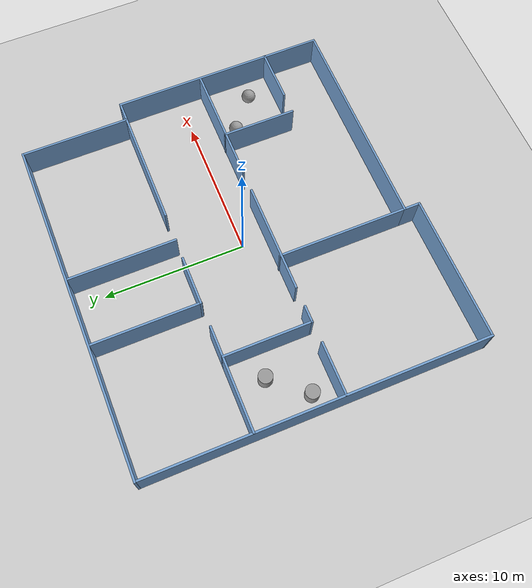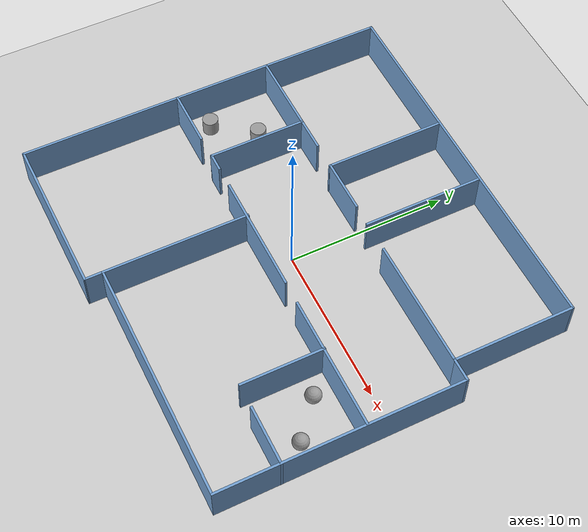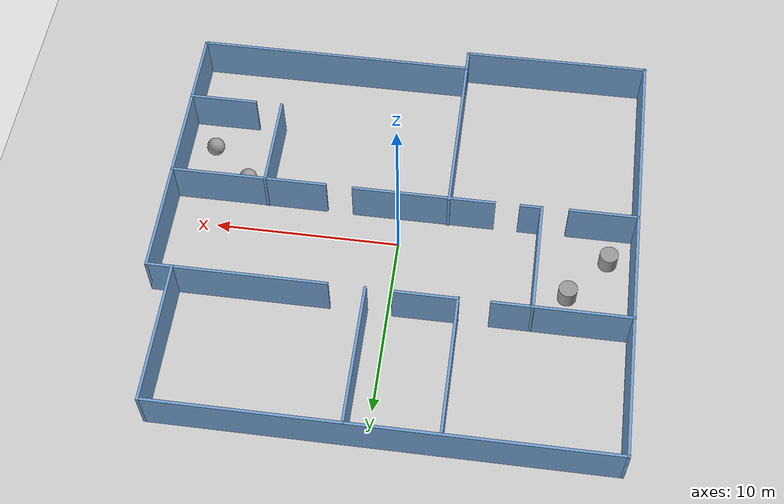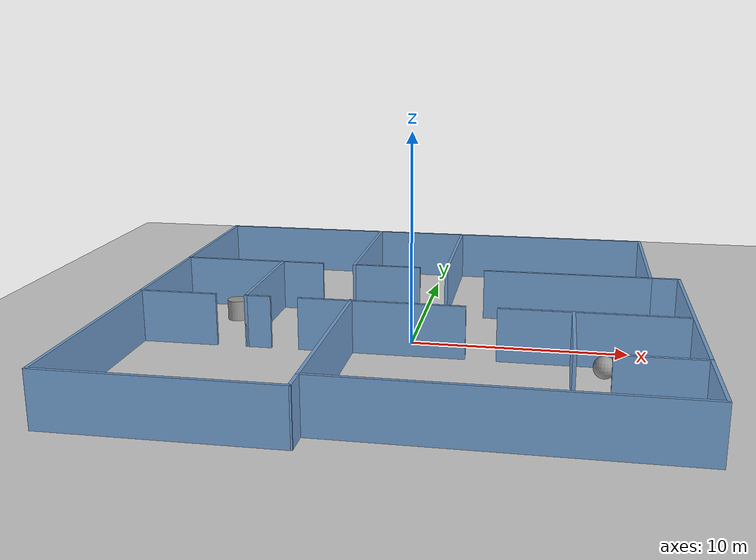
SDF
<sdf version="1.6">
 <world name="default">
  <light name="sun" type="directional">
   <pose>0 0 10 0 -0 0</pose>
   <diffuse>0.8 0.8 0.8 1</diffuse>
   <specular>0.2 0.2 0.2 1</specular>
   <attenuation>
    <range>1000</range>
    <constant>0.9</constant>
    <linear>0.01</linear>
    <quadratic>0.001</quadratic>
   </attenuation>
   <direction>-0.5 0.1 -0.9</direction>
  </light>
  <model name="ground_plane">
   <static>1</static>
   <link name="link">
    <collision name="collision">
     <geometry><plane><normal>0 0 1</normal><size>100 100</size></plane></geometry>
     <surface>
      <contact><collide_bitmask>65535</collide_bitmask></contact>
      <friction><ode><mu>100</mu><mu2>50</mu2></ode></friction>
     </surface>
    </collision>
    <visual name="visual">
     <cast_shadows>0</cast_shadows>
     <geometry><plane><normal>0 0 1</normal><size>100 100</size></plane></geometry>
     <material>
      <script><uri>file://media/materials/scripts/gazebo.material</uri><name>Gazebo/Grey</name></script>
     </material>
    </visual>
   </link>
  </model>
  <gravity>0 0 -9.8</gravity>
  <magnetic_field>6e-06 2.3e-05 -4.2e-05</magnetic_field>
  <atmosphere type="adiabatic"/>
  <physics name="default_physics" default="0" type="ode">
   <max_step_size>0.001</max_step_size>
   <real_time_factor>1</real_time_factor>
   <real_time_update_rate>1000</real_time_update_rate>
  </physics>
  <scene><ambient>0.4 0.4 0.4 1</ambient><background>0.7 0.7 0.7 1</background><shadows>1</shadows></scene>
  <audio><device>default</device></audio>
  <spherical_coordinates>
   <surface_model>EARTH_WGS84</surface_model>
   <latitude_deg>0</latitude_deg>
   <longitude_deg>0</longitude_deg>
   <elevation>0</elevation>
   <heading_deg>0</heading_deg>
  </spherical_coordinates>
  <model name="Beer_robot64">
   <pose>-0.0369 0.01443 0 0 -0 0</pose>
   <link name="Wall_10">
    <collision name="Wall_10_Collision">
     <geometry><box><size>15.25 0.15 2.5</size></box></geometry>
     <pose>0 0 1.25 0 -0 0</pose>
    </collision>
    <visual name="Wall_10_Visual">
     <pose>0 0 1.25 0 -0 0</pose>
     <geometry><box><size>15.25 0.15 2.5</size></box></geometry>
     <material>
      <script><uri>file://media/materials/scripts/gazebo.material</uri><name>Gazebo/Grey</name></script>
      <ambient>0.447059 0.623529 0.811765 1</ambient>
     </material>
     <meta><layer>0</layer></meta>
    </visual>
    <pose>12.5976 -3.22419 0 0 -0 1.5708</pose>
   </link>
   <link name="Wall_15">
    <collision name="Wall_15_Collision">
     <geometry><box><size>1.5 0.15 2.5</size></box></geometry>
     <pose>0 0 1.25 0 -0 0</pose>
    </collision>
    <visual name="Wall_15_Visual">
     <pose>0 0 1.25 0 -0 0</pose>
     <geometry><box><size>1.5 0.15 2.5</size></box></geometry>
     <material>
      <script><uri>file://media/materials/scripts/gazebo.material</uri><name>Gazebo/Grey</name></script>
      <ambient>0.447059 0.623529 0.811765 1</ambient>
     </material>
     <meta><layer>0</layer></meta>
    </visual>
    <pose>11.9226 4.32581 0 0 -0 3.14159</pose>
   </link>
   <link name="Wall_16">
    <collision name="Wall_16_Collision">
     <geometry><box><size>7.75 0.15 2.5</size></box></geometry>
     <pose>0 0 1.25 0 -0 0</pose>
    </collision>
    <visual name="Wall_16_Visual">
     <pose>0 0 1.25 0 -0 0</pose>
     <geometry><box><size>7.75 0.15 2.5</size></box></geometry>
     <material>
      <script><uri>file://media/materials/scripts/gazebo.material</uri><name>Gazebo/Grey</name></script>
      <ambient>0.447059 0.623529 0.811765 1</ambient>
     </material>
     <meta><layer>0</layer></meta>
    </visual>
    <pose>11.2476 8.12581 0 0 -0 1.5708</pose>
   </link>
   <link name="Wall_24">
    <collision name="Wall_24_Collision">
     <geometry><box><size>24 0.15 2.5</size></box></geometry>
     <pose>0 0 1.25 0 -0 0</pose>
    </collision>
    <visual name="Wall_24_Visual">
     <pose>0 0 1.25 0 -0 0</pose>
     <geometry><box><size>24 0.15 2.5</size></box></geometry>
     <material>
      <script><uri>file://media/materials/scripts/gazebo.material</uri><name>Gazebo/Grey</name></script>
      <ambient>0.447059 0.623529 0.811765 1</ambient>
     </material>
     <meta><layer>0</layer></meta>
    </visual>
    <pose>-12.5912 0.000993 0 0 -0 1.5708</pose>
   </link>
   <link name="Wall_26">
    <collision name="Wall_26_Collision">
     <geometry><box><size>24 0.15 2.5</size></box></geometry>
     <pose>0 0 1.25 0 -0 0</pose>
    </collision>
    <visual name="Wall_26_Visual">
     <pose>0 0 1.25 0 -0 0</pose>
     <geometry><box><size>24 0.15 2.5</size></box></geometry>
     <material>
      <script><uri>file://media/materials/scripts/gazebo.material</uri><name>Gazebo/Grey</name></script>
      <ambient>0.447059 0.623529 0.811765 1</ambient>
     </material>
     <meta><layer>0</layer></meta>
    </visual>
    <pose>-0.677406 11.9258 0 0 -0 3.14159</pose>
   </link>
   <link name="Wall_28">
    <collision name="Wall_28_Collision">
     <geometry><box><size>3.75 0.15 2.5</size></box></geometry>
     <pose>0 0 1.25 0 -0 0</pose>
    </collision>
    <visual name="Wall_28_Visual">
     <pose>0 0 1.25 0 -0 0</pose>
     <geometry><box><size>3.75 0.15 2.5</size></box></geometry>
     <material>
      <script><uri>file://media/materials/scripts/gazebo.material</uri><name>Gazebo/Grey</name></script>
      <ambient>0.447059 0.623529 0.811765 1</ambient>
     </material>
     <meta><layer>0</layer></meta>
    </visual>
    <pose>-10.781 -1.7817 0 0 -0 0</pose>
   </link>
   <link name="Wall_30">
    <collision name="Wall_30_Collision">
     <geometry><box><size>1.25 0.15 2.5</size></box></geometry>
     <pose>0 0 1.25 0 -0 0</pose>
    </collision>
    <visual name="Wall_30_Visual">
     <pose>0 0 1.25 0 -0 0</pose>
     <geometry><box><size>1.25 0.15 2.5</size></box></geometry>
     <material>
      <script><uri>file://media/materials/scripts/gazebo.material</uri><name>Gazebo/Grey</name></script>
      <ambient>0.447059 0.623529 0.811765 1</ambient>
     </material>
     <meta><layer>0</layer></meta>
    </visual>
    <pose>-6.9143 -1.74759 0 0 -0 0</pose>
   </link>
   <link name="Wall_32">
    <collision name="Wall_32_Collision">
     <geometry><box><size>7.75 0.15 2.5</size></box></geometry>
     <pose>0 0 1.25 0 -0 0</pose>
    </collision>
    <visual name="Wall_32_Visual">
     <pose>0 0 1.25 0 -0 0</pose>
     <geometry><box><size>7.75 0.15 2.5</size></box></geometry>
     <material>
      <script><uri>file://media/materials/scripts/gazebo.material</uri><name>Gazebo/Grey</name></script>
      <ambient>0.447059 0.623529 0.811765 1</ambient>
     </material>
     <meta><layer>0</layer></meta>
    </visual>
    <pose>-1.1221 -1.73876 0 0 -0 0</pose>
   </link>
   <link name="Wall_34">
    <collision name="Wall_34_Collision">
     <geometry><box><size>6.25 0.15 2.5</size></box></geometry>
     <pose>0 0 1.25 0 -0 0</pose>
    </collision>
    <visual name="Wall_34_Visual">
     <pose>0 0 1.25 0 -0 0</pose>
     <geometry><box><size>6.25 0.15 2.5</size></box></geometry>
     <material>
      <script><uri>file://media/materials/scripts/gazebo.material</uri><name>Gazebo/Grey</name></script>
      <ambient>0.447059 0.623529 0.811765 1</ambient>
     </material>
     <meta><layer>0</layer></meta>
    </visual>
    <pose>-7.4643 1.30241 0 0 -0 1.5708</pose>
   </link>
   <link name="Wall_36">
    <collision name="Wall_36_Collision">
     <geometry><box><size>5.25 0.15 2.5</size></box></geometry>
     <pose>0 0 1.25 0 -0 0</pose>
    </collision>
    <visual name="Wall_36_Visual">
     <pose>0 0 1.25 0 -0 0</pose>
     <geometry><box><size>5.25 0.15 2.5</size></box></geometry>
     <material>
      <script><uri>file://media/materials/scripts/gazebo.material</uri><name>Gazebo/Grey</name></script>
      <ambient>0.447059 0.623529 0.811765 1</ambient>
     </material>
     <meta><layer>0</layer></meta>
    </visual>
    <pose>-10.0143 4.35241 0 0 -0 3.14159</pose>
   </link>
   <link name="Wall_38">
    <collision name="Wall_38_Collision">
     <geometry><box><size>2.25 0.15 2.5</size></box></geometry>
     <pose>0 0 1.25 0 -0 0</pose>
    </collision>
    <visual name="Wall_38_Visual">
     <pose>0 0 1.25 0 -0 0</pose>
     <geometry><box><size>2.25 0.15 2.5</size></box></geometry>
     <material>
      <script><uri>file://media/materials/scripts/gazebo.material</uri><name>Gazebo/Grey</name></script>
      <ambient>0.447059 0.623529 0.811765 1</ambient>
     </material>
     <meta><layer>0</layer></meta>
    </visual>
    <pose>-6.4143 4.35241 0 0 -0 0</pose>
   </link>
   <link name="Wall_40">
    <collision name="Wall_40_Collision">
     <geometry><box><size>7.65476 0.15 2.5</size></box></geometry>
     <pose>0 0 1.25 0 -0 0</pose>
    </collision>
    <visual name="Wall_40_Visual">
     <pose>0 0 1.25 0 -0 0</pose>
     <geometry><box><size>7.65476 0.15 2.5</size></box></geometry>
     <material>
      <script><uri>file://media/materials/scripts/gazebo.material</uri><name>Gazebo/Grey</name></script>
      <ambient>0.447059 0.623529 0.811765 1</ambient>
     </material>
     <meta><layer>0</layer></meta>
    </visual>
    <pose>-3.63146 8.0896 0 0 -0 1.5708</pose>
   </link>
   <link name="Wall_42">
    <collision name="Wall_42_Collision">
     <geometry><box><size>3.5 0.15 2.5</size></box></geometry>
     <pose>0 0 1.25 0 -0 0</pose>
    </collision>
    <visual name="Wall_42_Visual">
     <pose>0 0 1.25 0 -0 0</pose>
     <geometry><box><size>3.5 0.15 2.5</size></box></geometry>
     <material>
      <script><uri>file://media/materials/scripts/gazebo.material</uri><name>Gazebo/Grey</name></script>
      <ambient>0.447059 0.623529 0.811765 1</ambient>
     </material>
     <meta><layer>0</layer></meta>
    </visual>
    <pose>-1.95646 4.35442 0 0 -0 0</pose>
   </link>
   <link name="Wall_44">
    <collision name="Wall_44_Collision">
     <geometry><box><size>7.75 0.15 2.5</size></box></geometry>
     <pose>0 0 1.25 0 -0 0</pose>
    </collision>
    <visual name="Wall_44_Visual">
     <pose>0 0 1.25 0 -0 0</pose>
     <geometry><box><size>7.75 0.15 2.5</size></box></geometry>
     <material>
      <script><uri>file://media/materials/scripts/gazebo.material</uri><name>Gazebo/Grey</name></script>
      <ambient>0.447059 0.623529 0.811765 1</ambient>
     </material>
     <meta><layer>0</layer></meta>
    </visual>
    <pose>1.15327 8.12245 0 0 -0 1.5708</pose>
   </link>
   <link name="Wall_46">
    <collision name="Wall_46_Collision">
     <geometry><box><size>8.25 0.15 2.5</size></box></geometry>
     <pose>0 0 1.25 0 -0 0</pose>
    </collision>
    <visual name="Wall_46_Visual">
     <pose>0 0 1.25 0 -0 0</pose>
     <geometry><box><size>8.25 0.15 2.5</size></box></geometry>
     <material>
      <script><uri>file://media/materials/scripts/gazebo.material</uri><name>Gazebo/Grey</name></script>
      <ambient>0.447059 0.623529 0.811765 1</ambient>
     </material>
     <meta><layer>0</layer></meta>
    </visual>
    <pose>7.19759 4.32581 0 0 -0 3.14159</pose>
   </link>
   <link name="Wall_48">
    <collision name="Wall_48_Collision">
     <geometry><box><size>8.5 0.15 2.5</size></box></geometry>
     <pose>0 0 1.25 0 -0 0</pose>
    </collision>
    <visual name="Wall_48_Visual">
     <pose>0 0 1.25 0 -0 0</pose>
     <geometry><box><size>8.5 0.15 2.5</size></box></geometry>
     <material>
      <script><uri>file://media/materials/scripts/gazebo.material</uri><name>Gazebo/Grey</name></script>
      <ambient>0.447059 0.623529 0.811765 1</ambient>
     </material>
     <meta><layer>0</layer></meta>
    </visual>
    <pose>8.39959 -1.75989 0 0 -0 3.14159</pose>
   </link>
   <link name="Wall_5">
    <collision name="Wall_5_Collision">
     <geometry><box><size>10.2388 0.15 2.5</size></box></geometry>
     <pose>0 0 1.25 0 -0 0</pose>
    </collision>
    <visual name="Wall_5_Visual">
     <pose>0 0 1.25 0 -0 0</pose>
     <geometry><box><size>10.2388 0.15 2.5</size></box></geometry>
     <material>
      <script><uri>file://media/materials/scripts/gazebo.material</uri><name>Gazebo/Grey</name></script>
      <ambient>0.447059 0.623529 0.811765 1</ambient>
     </material>
     <meta><layer>0</layer></meta>
    </visual>
    <pose>-7.54678 -11.8999 0 0 -0 0.005097</pose>
   </link>
   <link name="Wall_51">
    <collision name="Wall_51_Collision">
     <geometry><box><size>5.25 0.15 2.5</size></box></geometry>
     <pose>0 0 1.25 0 -0 0</pose>
    </collision>
    <visual name="Wall_51_Visual">
     <pose>0 0 1.25 0 -0 0</pose>
     <geometry><box><size>5.25 0.15 2.5</size></box></geometry>
     <material>
      <script><uri>file://media/materials/scripts/gazebo.material</uri><name>Gazebo/Grey</name></script>
      <ambient>0.447059 0.623529 0.811765 1</ambient>
     </material>
     <meta><layer>0</layer></meta>
    </visual>
    <pose>7.48966 -4.27401 0 0 -0 -1.5708</pose>
   </link>
   <link name="Wall_53">
    <collision name="Wall_53_Collision">
     <geometry><box><size>3.75 0.15 2.5</size></box></geometry>
     <pose>0 0 1.25 0 -0 0</pose>
    </collision>
    <visual name="Wall_53_Visual">
     <pose>0 0 1.25 0 -0 0</pose>
     <geometry><box><size>3.75 0.15 2.5</size></box></geometry>
     <material>
      <script><uri>file://media/materials/scripts/gazebo.material</uri><name>Gazebo/Grey</name></script>
      <ambient>0.447059 0.623529 0.811765 1</ambient>
     </material>
     <meta><layer>0</layer></meta>
    </visual>
    <pose>10.8024 -6.83676 0 0 -0 3.14159</pose>
   </link>
   <link name="Wall_55">
    <collision name="Wall_55_Collision">
     <geometry><box><size>9.25 0.15 2.5</size></box></geometry>
     <pose>0 0 1.25 0 -0 0</pose>
    </collision>
    <visual name="Wall_55_Visual">
     <pose>0 0 1.25 0 -0 0</pose>
     <geometry><box><size>9.25 0.15 2.5</size></box></geometry>
     <material>
      <script><uri>file://media/materials/scripts/gazebo.material</uri><name>Gazebo/Grey</name></script>
      <ambient>0.447059 0.623529 0.811765 1</ambient>
     </material>
     <meta><layer>0</layer></meta>
    </visual>
    <pose>-2.50241 -6.22419 0 0 -0 1.5708</pose>
   </link>
   <link name="Wall_7">
    <collision name="Wall_7_Collision">
     <geometry><box><size>1.25 0.15 2.5</size></box></geometry>
     <pose>0 0 1.25 0 -0 0</pose>
    </collision>
    <visual name="Wall_7_Visual">
     <pose>0 0 1.25 0 -0 0</pose>
     <geometry><box><size>1.25 0.15 2.5</size></box></geometry>
     <material>
      <script><uri>file://media/materials/scripts/gazebo.material</uri><name>Gazebo/Grey</name></script>
      <ambient>0.447059 0.623529 0.811765 1</ambient>
     </material>
     <meta><layer>0</layer></meta>
    </visual>
    <pose>-2.50241 -11.3242 0 0 -0 1.5708</pose>
   </link>
   <link name="Wall_8">
    <collision name="Wall_8_Collision">
     <geometry><box><size>15.25 0.15 2.5</size></box></geometry>
     <pose>0 0 1.25 0 -0 0</pose>
    </collision>
    <visual name="Wall_8_Visual">
     <pose>0 0 1.25 0 -0 0</pose>
     <geometry><box><size>15.25 0.15 2.5</size></box></geometry>
     <material>
      <script><uri>file://media/materials/scripts/gazebo.material</uri><name>Gazebo/Grey</name></script>
      <ambient>0.447059 0.623529 0.811765 1</ambient>
     </material>
     <meta><layer>0</layer></meta>
    </visual>
    <pose>5.04759 -10.7742 0 0 -0 0</pose>
   </link>
   <static>1</static>
  </model>
  <model name="unit_sphere">
   <pose>11.0387 -4.91772 0.5 0 -0 0</pose>
   <link name="link">
    <inertial>
     <mass>1</mass>
     <inertia><ixx>0.1</ixx><ixy>0</ixy><ixz>0</ixz><iyy>0.1</iyy><iyz>0</iyz><izz>0.1</izz></inertia>
    </inertial>
    <collision name="collision"><geometry><sphere><radius>0.5</radius></sphere></geometry></collision>
    <visual name="visual">
     <geometry><sphere><radius>0.5</radius></sphere></geometry>
     <material>
      <script><name>Gazebo/Grey</name><uri>file://media/materials/scripts/gazebo.material</uri></script>
     </material>
    </visual>
   </link>
  </model>
  <model name="unit_sphere_clone_0">
   <pose>8.82264 -3.03936 0.5 0 -0 0</pose>
   <link name="link">
    <inertial>
     <mass>1</mass>
     <inertia><ixx>0.1</ixx><ixy>0</ixy><ixz>0</ixz><iyy>0.1</iyy><iyz>0</iyz><izz>0.1</izz></inertia>
    </inertial>
    <collision name="collision"><geometry><sphere><radius>0.5</radius></sphere></geometry></collision>
    <visual name="visual">
     <geometry><sphere><radius>0.5</radius></sphere></geometry>
     <material>
      <script><name>Gazebo/Grey</name><uri>file://media/materials/scripts/gazebo.material</uri></script>
     </material>
    </visual>
   </link>
  </model>
  <model name="unit_cylinder">
   <pose>-9.30085 2.18934 0.499998 3e-06 -4e-06 -3e-06</pose>
   <link name="link">
    <inertial>
     <mass>1</mass>
     <inertia><ixx>0.145833</ixx><ixy>0</ixy><ixz>0</ixz><iyy>0.145833</iyy><iyz>0</iyz><izz>0.125</izz></inertia>
    </inertial>
    <collision name="collision">
     <geometry><cylinder><radius>0.5</radius><length>1</length></cylinder></geometry>
    </collision>
    <visual name="visual">
     <geometry><cylinder><radius>0.5</radius><length>1</length></cylinder></geometry>
     <material>
      <script><name>Gazebo/Grey</name><uri>file://media/materials/scripts/gazebo.material</uri></script>
     </material>
    </visual>
   </link>
  </model>
  <model name="unit_cylinder_clone">
   <pose>-11.3358 -0.192577 0.499991 -0 -0 -6.7e-05</pose>
   <link name="link">
    <inertial>
     <mass>1</mass>
     <inertia><ixx>0.145833</ixx><ixy>0</ixy><ixz>0</ixz><iyy>0.145833</iyy><iyz>0</iyz><izz>0.125</izz></inertia>
    </inertial>
    <collision name="collision">
     <geometry><cylinder><radius>0.5</radius><length>1</length></cylinder></geometry>
    </collision>
    <visual name="visual">
     <geometry><cylinder><radius>0.5</radius><length>1</length></cylinder></geometry>
     <material>
      <script><name>Gazebo/Grey</name><uri>file://media/materials/scripts/gazebo.material</uri></script>
     </material>
    </visual>
   </link>
  </model>
 </world>
</sdf>
